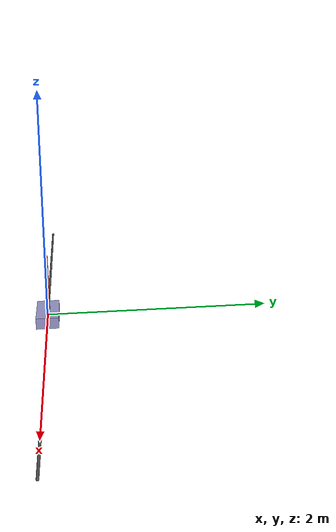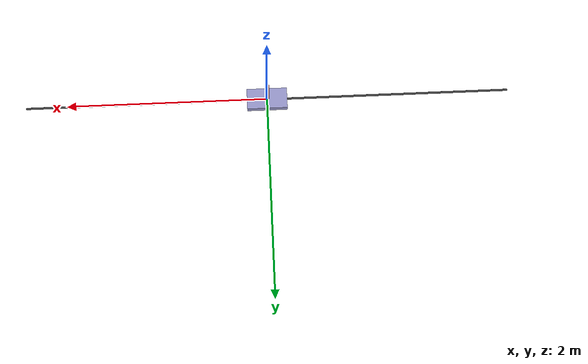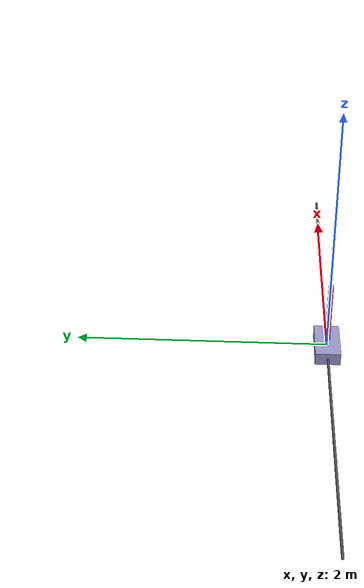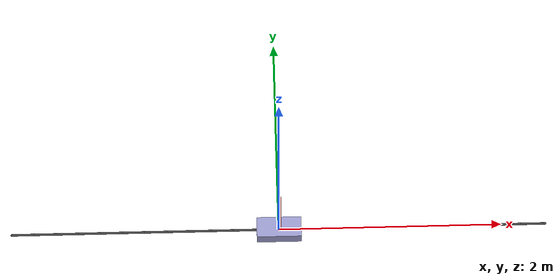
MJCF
<!-- Simple cart-pole (inverted pendulum) for simforge sample assets -->
<mujoco model="cart_pole">
  <compiler angle="radian"/>

  <default>
    <joint damping="0.05"/>
    <geom rgba="0.6 0.6 0.8 1"/>
  </default>

  <worldbody>
    <!-- Rail (visual only) -->
    <geom name="rail" type="capsule" fromto="-2.4 0 0  2.4 0 0"
          size="0.01" rgba="0.3 0.3 0.3 1" contype="0" conaffinity="0"/>

    <!-- Cart -->
    <body name="cart" pos="0 0 0">
      <joint name="slider" type="slide" axis="1 0 0" range="-2.4 2.4"/>
      <geom name="cart_geom" type="box" size="0.2 0.1 0.05" mass="1.0"/>

      <!-- Pole -->
      <body name="pole" pos="0 0 0.05">
        <joint name="hinge" type="hinge" axis="0 1 0" range="-1.57 1.57"/>
        <geom name="pole_geom" type="capsule" fromto="0 0 0  0 0 0.5"
              size="0.02" mass="0.1" rgba="0.9 0.2 0.2 1"/>
      </body>
    </body>
  </worldbody>

  <actuator>
    <force name="slide_force" joint="slider" ctrlrange="-100 100"/>
  </actuator>
</mujoco>
